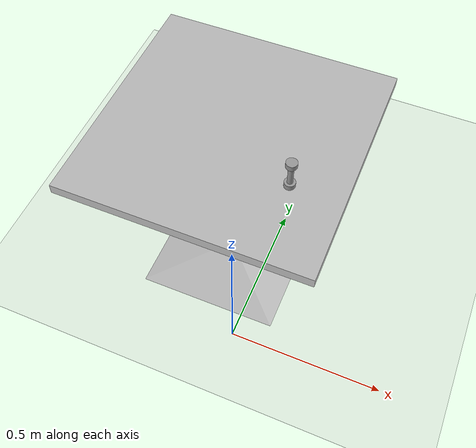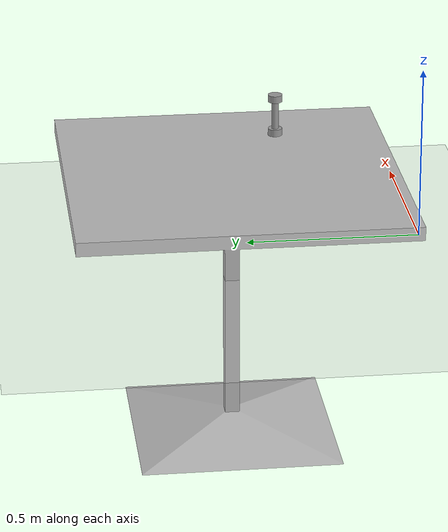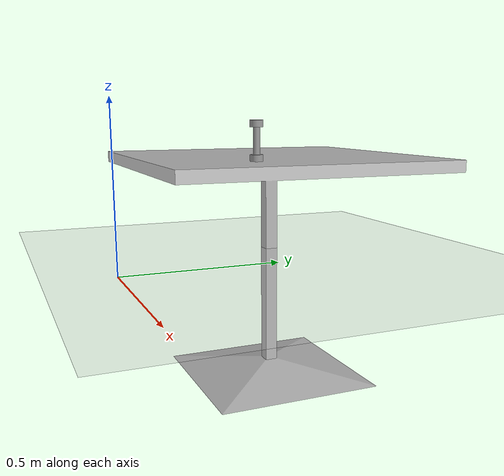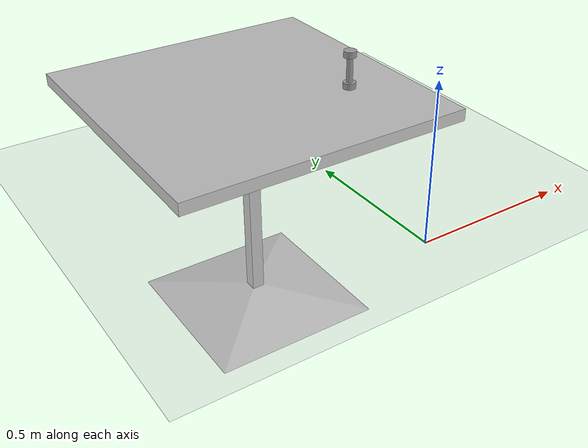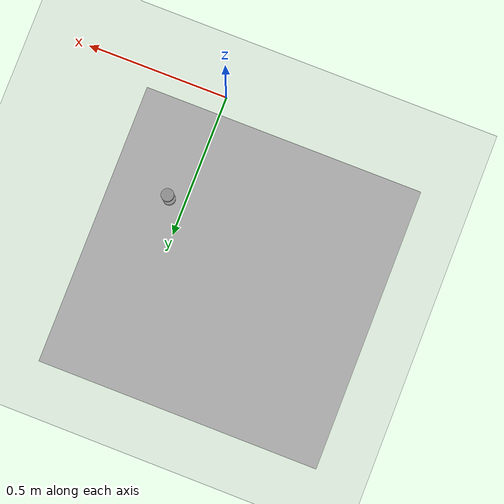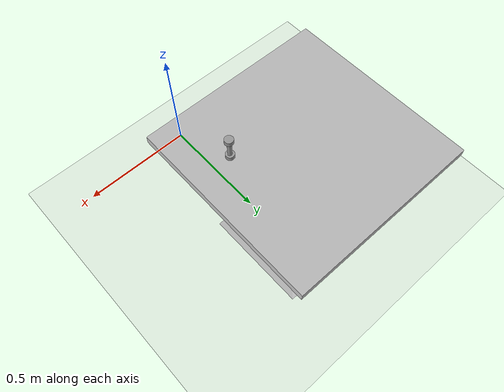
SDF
<sdf version="1.7">
 <world name="default">
  <light name="sun" type="directional">
   <pose>0 0 10 0 -0 0</pose>
   <diffuse>0.8 0.8 0.8 1</diffuse>
   <specular>0.2 0.2 0.2 1</specular>
   <attenuation>
    <range>1000</range>
    <constant>0.9</constant>
    <linear>0.01</linear>
    <quadratic>0.001</quadratic>
   </attenuation>
   <direction>-0.5 0.1 -0.9</direction>
   <spot><inner_angle>0</inner_angle><outer_angle>0</outer_angle><falloff>0</falloff></spot>
  </light>
  <model name="ground_plane">
   <static>1</static>
   <link name="link">
    <collision name="collision">
     <geometry><plane><normal>0 0 1</normal><size>100 100</size></plane></geometry>
     <surface>
      <contact><collide_bitmask>65535</collide_bitmask></contact>
      <friction><ode><mu>100</mu><mu2>50</mu2></ode></friction>
     </surface>
    </collision>
    <visual name="visual">
     <cast_shadows>0</cast_shadows>
     <geometry><plane><normal>0 0 1</normal><size>100 100</size></plane></geometry>
     <material>
      <script><uri>file://media/materials/scripts/gazebo.material</uri><name>Gazebo/Grey</name></script>
     </material>
    </visual>
   </link>
  </model>
  <gravity>0 0 -9.8</gravity>
  <magnetic_field>6e-06 2.3e-05 -4.2e-05</magnetic_field>
  <atmosphere type="adiabatic"/>
  <physics type="ode">
   <max_step_size>0.001</max_step_size>
   <real_time_factor>1</real_time_factor>
   <real_time_update_rate>1000</real_time_update_rate>
  </physics>
  <scene><ambient>0.4 0.4 0.4 1</ambient><background>0.7 0.7 0.7 1</background><shadows>1</shadows></scene>
  <spherical_coordinates>
   <surface_model>EARTH_WGS84</surface_model>
   <latitude_deg>0</latitude_deg>
   <longitude_deg>0</longitude_deg>
   <elevation>0</elevation>
   <heading_deg>0</heading_deg>
  </spherical_coordinates>
  <model name="cafe_table">
   <static>1</static>
   <link name="link">
    <collision name="surface">
     <pose>0 0 0.755 0 -0 0</pose>
     <geometry><box><size>0.913 0.913 0.04</size></box></geometry>
    </collision>
    <collision name="column">
     <pose>0 0 0.37 0 -0 0</pose>
     <geometry><box><size>0.042 0.042 0.74</size></box></geometry>
    </collision>
    <collision name="base">
     <pose>0 0 0.02 0 -0 0</pose>
     <geometry><box><size>0.56 0.56 0.04</size></box></geometry>
    </collision>
    <visual name="visual">
     <geometry><mesh><uri>model://cafe_table/meshes/cafe_table.dae</uri></mesh></geometry>
    </visual>
   </link>
   <pose>-0.237558 0.571548 -0.457838 0 -0 0</pose>
  </model>
  <model name="godbomb_0">
   <link name="link_0">
    <inertial>
     <mass>0.5</mass>
     <inertia>
      <ixx>0.00042917</ixx>
      <ixy>0</ixy>
      <ixz>0</ixz>
      <iyy>0.00042917</iyy>
      <iyz>0</iyz>
      <izz>2.5e-05</izz>
     </inertia>
    </inertial>
    <visual name="ModelPreview_2::link_0::visual_2">
     <pose>0 0 -0.05 0 -0 0</pose>
     <geometry><cylinder><radius>0.02</radius><length>0.02</length></cylinder></geometry>
     <material>
      <lighting>1</lighting>
      <script><uri>file://media/materials/scripts/gazebo.material</uri><name>Gazebo/Grey</name></script>
      <shader type="pixel"><normal_map>__default__</normal_map></shader>
      <ambient>0.3 0.3 0.3 1</ambient>
      <diffuse>0.7 0.7 0.7 1</diffuse>
      <specular>0.01 0.01 0.01 1</specular>
      <emissive>0 0 0 1</emissive>
     </material>
    </visual>
    <visual name="visual">
     <geometry><cylinder><radius>0.01</radius><length>0.08</length></cylinder></geometry>
     <material>
      <lighting>1</lighting>
      <script><uri>file://media/materials/scripts/gazebo.material</uri><name>Gazebo/Grey</name></script>
      <shader type="pixel"><normal_map>__default__</normal_map></shader>
      <ambient>0.3 0.3 0.3 1</ambient>
      <diffuse>0.7 0.7 0.7 1</diffuse>
      <specular>0.01 0.01 0.01 1</specular>
      <emissive>0 0 0 1</emissive>
     </material>
    </visual>
    <visual name="ModelPreview_0::link_0::visual_1">
     <pose>0 0 0.05 0 -0 0</pose>
     <geometry><cylinder><radius>0.02</radius><length>0.02</length></cylinder></geometry>
     <material>
      <lighting>1</lighting>
      <script><uri>file://media/materials/scripts/gazebo.material</uri><name>Gazebo/Grey</name></script>
      <shader type="pixel"><normal_map>__default__</normal_map></shader>
      <ambient>0.3 0.3 0.3 1</ambient>
      <diffuse>0.7 0.7 0.7 1</diffuse>
      <specular>0.01 0.01 0.01 1</specular>
      <emissive>0 0 0 1</emissive>
     </material>
    </visual>
    <collision name="collision_2">
     <pose>0 0 -0.05 0 -0 0</pose>
     <geometry><cylinder><radius>0.02</radius><length>0.02</length></cylinder></geometry>
     <surface>
      <friction>
       <ode><mu>1</mu><mu2>1</mu2><fdir1>0 0 0</fdir1><slip1>0</slip1><slip2>0</slip2></ode>
       <torsional>
        <coefficient>1</coefficient>
        <patch_radius>0</patch_radius>
        <surface_radius>0</surface_radius>
        <use_patch_radius>1</use_patch_radius>
        <ode><slip>0</slip></ode>
       </torsional>
      </friction>
      <bounce><restitution_coefficient>0</restitution_coefficient><threshold>1e+06</threshold></bounce>
      <contact>
       <collide_without_contact>0</collide_without_contact>
       <collide_without_contact_bitmask>1</collide_without_contact_bitmask>
       <collide_bitmask>1</collide_bitmask>
       <ode>
        <soft_cfm>0</soft_cfm>
        <soft_erp>0.2</soft_erp>
        <kp>1e+13</kp>
        <kd>1</kd>
        <max_vel>0.01</max_vel>
        <min_depth>0</min_depth>
       </ode>
       <bullet>
        <split_impulse>1</split_impulse>
        <split_impulse_penetration_threshold>-0.01</split_impulse_penetration_threshold>
        <soft_cfm>0</soft_cfm>
        <soft_erp>0.2</soft_erp>
        <kp>1e+13</kp>
        <kd>1</kd>
       </bullet>
      </contact>
     </surface>
    </collision>
    <collision name="collision">
     <geometry><cylinder><radius>0.01</radius><length>0.08</length></cylinder></geometry>
     <surface>
      <friction>
       <ode><mu>1</mu><mu2>1</mu2><fdir1>0 0 0</fdir1><slip1>0</slip1><slip2>0</slip2></ode>
       <torsional>
        <coefficient>1</coefficient>
        <patch_radius>0</patch_radius>
        <surface_radius>0</surface_radius>
        <use_patch_radius>1</use_patch_radius>
        <ode><slip>0</slip></ode>
       </torsional>
      </friction>
      <bounce><restitution_coefficient>0</restitution_coefficient><threshold>1e+06</threshold></bounce>
      <contact>
       <collide_without_contact>0</collide_without_contact>
       <collide_without_contact_bitmask>1</collide_without_contact_bitmask>
       <collide_bitmask>1</collide_bitmask>
       <ode>
        <soft_cfm>0</soft_cfm>
        <soft_erp>0.2</soft_erp>
        <kp>1e+13</kp>
        <kd>1</kd>
        <max_vel>0.01</max_vel>
        <min_depth>0</min_depth>
       </ode>
       <bullet>
        <split_impulse>1</split_impulse>
        <split_impulse_penetration_threshold>-0.01</split_impulse_penetration_threshold>
        <soft_cfm>0</soft_cfm>
        <soft_erp>0.2</soft_erp>
        <kp>1e+13</kp>
        <kd>1</kd>
       </bullet>
      </contact>
     </surface>
    </collision>
    <collision name="collision_1">
     <pose>0 0 0.05 0 -0 0</pose>
     <geometry><cylinder><radius>0.02</radius><length>0.02</length></cylinder></geometry>
     <surface>
      <friction>
       <ode><mu>1</mu><mu2>1</mu2><fdir1>0 0 0</fdir1><slip1>0</slip1><slip2>0</slip2></ode>
       <torsional>
        <coefficient>1</coefficient>
        <patch_radius>0</patch_radius>
        <surface_radius>0</surface_radius>
        <use_patch_radius>1</use_patch_radius>
        <ode><slip>0</slip></ode>
       </torsional>
      </friction>
      <bounce><restitution_coefficient>0</restitution_coefficient><threshold>1e+06</threshold></bounce>
      <contact>
       <collide_without_contact>0</collide_without_contact>
       <collide_without_contact_bitmask>1</collide_without_contact_bitmask>
       <collide_bitmask>1</collide_bitmask>
       <ode>
        <soft_cfm>0</soft_cfm>
        <soft_erp>0.2</soft_erp>
        <kp>1e+13</kp>
        <kd>1</kd>
        <max_vel>0.01</max_vel>
        <min_depth>0</min_depth>
       </ode>
       <bullet>
        <split_impulse>1</split_impulse>
        <split_impulse_penetration_threshold>-0.01</split_impulse_penetration_threshold>
        <soft_cfm>0</soft_cfm>
        <soft_erp>0.2</soft_erp>
        <kp>1e+13</kp>
        <kd>1</kd>
       </bullet>
      </contact>
     </surface>
    </collision>
   </link>
   <static>0</static>
   <pose>0.026665 0.416817 0.377153 -1.5e-05 3e-06 8.8e-05</pose>
  </model>
 </world>
</sdf>
